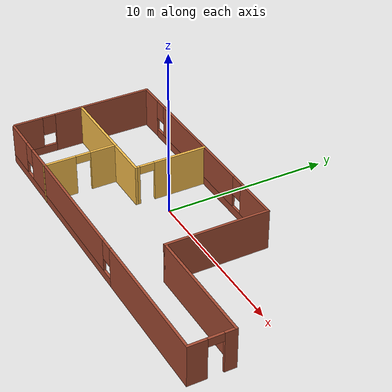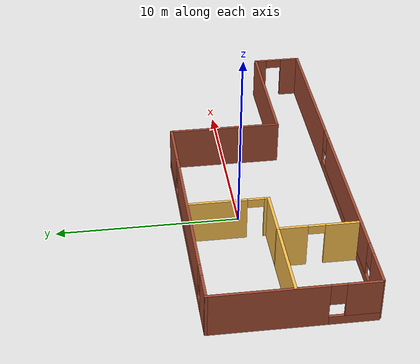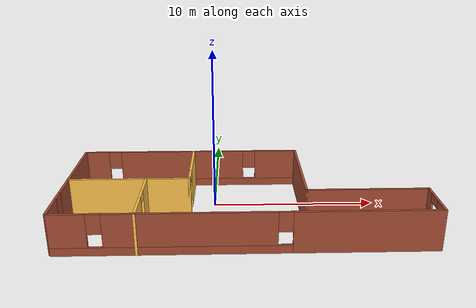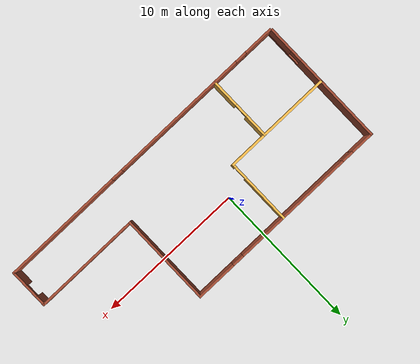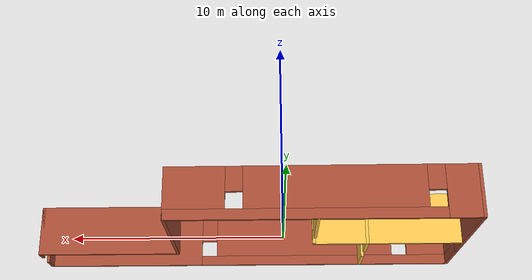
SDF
<?xml version='1.0'?>
<sdf version='1.7'>
  <model name='Buliding'>
    <pose>1.84863 -1.30124 0 0 -0 0</pose>
    <link name='Wall_10'>
      <collision name='Wall_10_Collision'>
        <geometry>
          <box>
            <size>4.75 0.15 2.5</size>
          </box>
        </geometry>
        <pose>0 0 1.25 0 -0 0</pose>
      </collision>
      <visual name='Wall_10_Visual'>
        <pose>0 0 1.25 0 -0 0</pose>
        <geometry>
          <box>
            <size>4.75 0.15 2.5</size>
          </box>
        </geometry>
        <material>
          <script>
            <uri>file://media/materials/scripts/gazebo.material</uri>
            <name>Gazebo/Grey</name>
          </script>
          <ambient>1 0.764706 0.305882 1</ambient>
        </material>
        <meta>
          <layer>0</layer>
        </meta>
      </visual>
      <pose>-8.25301 -0.003042 0 0 -0 0</pose>
    </link>
    <link name='Wall_11'>
      <pose>-5.95301 -2.17804 0 0 -0 -1.5708</pose>
      <visual name='Wall_11_Visual_0'>
        <pose>-1.42346 0 1.25 0 -0 0</pose>
        <geometry>
          <box>
            <size>1.65308 0.15 2.5</size>
          </box>
        </geometry>
        <material>
          <script>
            <uri>file://media/materials/scripts/gazebo.material</uri>
            <name>Gazebo/Grey</name>
          </script>
          <ambient>1 0.764706 0.305882 1</ambient>
        </material>
        <meta>
          <layer>0</layer>
        </meta>
      </visual>
      <collision name='Wall_11_Collision_0'>
        <geometry>
          <box>
            <size>1.65308 0.15 2.5</size>
          </box>
        </geometry>
        <pose>-1.42346 0 1.25 0 -0 0</pose>
      </collision>
      <visual name='Wall_11_Visual_1'>
        <pose>1.27654 0 1.25 0 -0 0</pose>
        <geometry>
          <box>
            <size>1.94692 0.15 2.5</size>
          </box>
        </geometry>
        <material>
          <script>
            <uri>file://media/materials/scripts/gazebo.material</uri>
            <name>Gazebo/Grey</name>
          </script>
          <ambient>1 0.764706 0.305882 1</ambient>
        </material>
        <meta>
          <layer>0</layer>
        </meta>
      </visual>
      <collision name='Wall_11_Collision_1'>
        <geometry>
          <box>
            <size>1.94692 0.15 2.5</size>
          </box>
        </geometry>
        <pose>1.27654 0 1.25 0 -0 0</pose>
      </collision>
      <visual name='Wall_11_Visual_2'>
        <pose>-0.14692 0 2.25 0 -0 0</pose>
        <geometry>
          <box>
            <size>0.9 0.15 0.5</size>
          </box>
        </geometry>
        <material>
          <script>
            <uri>file://media/materials/scripts/gazebo.material</uri>
            <name>Gazebo/Grey</name>
          </script>
          <ambient>1 0.764706 0.305882 1</ambient>
        </material>
        <meta>
          <layer>0</layer>
        </meta>
      </visual>
      <collision name='Wall_11_Collision_2'>
        <geometry>
          <box>
            <size>0.9 0.15 0.5</size>
          </box>
        </geometry>
        <pose>-0.14692 0 2.25 0 -0 0</pose>
      </collision>
    </link>
    <link name='Wall_13'>
      <collision name='Wall_13_Collision'>
        <geometry>
          <box>
            <size>2.75 0.15 2.5</size>
          </box>
        </geometry>
        <pose>0 0 1.25 0 -0 0</pose>
      </collision>
      <visual name='Wall_13_Visual'>
        <pose>0 0 1.25 0 -0 0</pose>
        <geometry>
          <box>
            <size>2.75 0.15 2.5</size>
          </box>
        </geometry>
        <material>
          <script>
            <uri>file://media/materials/scripts/gazebo.material</uri>
            <name>Gazebo/Grey</name>
          </script>
          <ambient>1 0.764706 0.305882 1</ambient>
        </material>
        <meta>
          <layer>0</layer>
        </meta>
      </visual>
      <pose>-4.65301 -0.003042 0 0 -0 0</pose>
    </link>
    <link name='Wall_14'>
      <pose>-3.35302 2.17196 0 0 -0 1.5708</pose>
      <visual name='Wall_14_Visual_0'>
        <pose>-2.09628 0 1.25 0 -0 0</pose>
        <geometry>
          <box>
            <size>0.307443 0.15 2.5</size>
          </box>
        </geometry>
        <material>
          <script>
            <uri>file://media/materials/scripts/gazebo.material</uri>
            <name>Gazebo/Grey</name>
          </script>
          <ambient>1 0.764706 0.305882 1</ambient>
        </material>
        <meta>
          <layer>0</layer>
        </meta>
      </visual>
      <collision name='Wall_14_Collision_0'>
        <geometry>
          <box>
            <size>0.307443 0.15 2.5</size>
          </box>
        </geometry>
        <pose>-2.09628 0 1.25 0 -0 0</pose>
      </collision>
      <visual name='Wall_14_Visual_1'>
        <pose>0.603722 0 1.25 0 -0 0</pose>
        <geometry>
          <box>
            <size>3.29256 0.15 2.5</size>
          </box>
        </geometry>
        <material>
          <script>
            <uri>file://media/materials/scripts/gazebo.material</uri>
            <name>Gazebo/Grey</name>
          </script>
          <ambient>1 0.764706 0.305882 1</ambient>
        </material>
        <meta>
          <layer>0</layer>
        </meta>
      </visual>
      <collision name='Wall_14_Collision_1'>
        <geometry>
          <box>
            <size>3.29256 0.15 2.5</size>
          </box>
        </geometry>
        <pose>0.603722 0 1.25 0 -0 0</pose>
      </collision>
      <visual name='Wall_14_Visual_2'>
        <pose>-1.49256 0 2.25 0 -0 0</pose>
        <geometry>
          <box>
            <size>0.9 0.15 0.5</size>
          </box>
        </geometry>
        <material>
          <script>
            <uri>file://media/materials/scripts/gazebo.material</uri>
            <name>Gazebo/Grey</name>
          </script>
          <ambient>1 0.764706 0.305882 1</ambient>
        </material>
        <meta>
          <layer>0</layer>
        </meta>
      </visual>
      <collision name='Wall_14_Collision_2'>
        <geometry>
          <box>
            <size>0.9 0.15 0.5</size>
          </box>
        </geometry>
        <pose>-1.49256 0 2.25 0 -0 0</pose>
      </collision>
    </link>
    <link name='Wall_2'>
      <pose>-3.55 4.35304 0 0 -0 0</pose>
      <visual name='Wall_2_Visual_0'>
        <pose>-6.31386 0 1.25 0 -0 0</pose>
        <geometry>
          <box>
            <size>1.62227 0.15 2.5</size>
          </box>
        </geometry>
        <material>
          <script>
            <uri>file://media/materials/scripts/gazebo.material</uri>
            <name>Gazebo/Bricks</name>
          </script>
          <ambient>1 1 1 1</ambient>
        </material>
        <meta>
          <layer>0</layer>
        </meta>
      </visual>
      <collision name='Wall_2_Collision_0'>
        <geometry>
          <box>
            <size>1.62227 0.15 2.5</size>
          </box>
        </geometry>
        <pose>-6.31386 0 1.25 0 -0 0</pose>
      </collision>
      <visual name='Wall_2_Visual_1'>
        <pose>0.811137 0 0.25 0 -0 0</pose>
        <geometry>
          <box>
            <size>12.6277 0.15 0.5</size>
          </box>
        </geometry>
        <material>
          <script>
            <uri>file://media/materials/scripts/gazebo.material</uri>
            <name>Gazebo/Bricks</name>
          </script>
          <ambient>1 1 1 1</ambient>
        </material>
        <meta>
          <layer>0</layer>
        </meta>
      </visual>
      <collision name='Wall_2_Collision_1'>
        <geometry>
          <box>
            <size>12.6277 0.15 0.5</size>
          </box>
        </geometry>
        <pose>0.811137 0 0.25 0 -0 0</pose>
      </collision>
      <visual name='Wall_2_Visual_2'>
        <pose>-0.591928 0 1.5 0 -0 0</pose>
        <geometry>
          <box>
            <size>8.22159 0.15 2</size>
          </box>
        </geometry>
        <material>
          <script>
            <uri>file://media/materials/scripts/gazebo.material</uri>
            <name>Gazebo/Bricks</name>
          </script>
          <ambient>1 1 1 1</ambient>
        </material>
        <meta>
          <layer>0</layer>
        </meta>
      </visual>
      <collision name='Wall_2_Collision_2'>
        <geometry>
          <box>
            <size>8.22159 0.15 2</size>
          </box>
        </geometry>
        <pose>-0.591928 0 1.5 0 -0 0</pose>
      </collision>
      <visual name='Wall_2_Visual_3'>
        <pose>5.72193 0 1.5 0 -0 0</pose>
        <geometry>
          <box>
            <size>2.80613 0.15 2</size>
          </box>
        </geometry>
        <material>
          <script>
            <uri>file://media/materials/scripts/gazebo.material</uri>
            <name>Gazebo/Bricks</name>
          </script>
          <ambient>1 1 1 1</ambient>
        </material>
        <meta>
          <layer>0</layer>
        </meta>
      </visual>
      <collision name='Wall_2_Collision_3'>
        <geometry>
          <box>
            <size>2.80613 0.15 2</size>
          </box>
        </geometry>
        <pose>5.72193 0 1.5 0 -0 0</pose>
      </collision>
      <visual name='Wall_2_Visual_4'>
        <pose>-5.10273 0 1.9 0 -0 0</pose>
        <geometry>
          <box>
            <size>0.8 0.15 1.2</size>
          </box>
        </geometry>
        <material>
          <script>
            <uri>file://media/materials/scripts/gazebo.material</uri>
            <name>Gazebo/Bricks</name>
          </script>
          <ambient>1 1 1 1</ambient>
        </material>
        <meta>
          <layer>0</layer>
        </meta>
      </visual>
      <collision name='Wall_2_Collision_4'>
        <geometry>
          <box>
            <size>0.8 0.15 1.2</size>
          </box>
        </geometry>
        <pose>-5.10273 0 1.9 0 -0 0</pose>
      </collision>
      <visual name='Wall_2_Visual_5'>
        <pose>3.91887 0 1.9 0 -0 0</pose>
        <geometry>
          <box>
            <size>0.8 0.15 1.2</size>
          </box>
        </geometry>
        <material>
          <script>
            <uri>file://media/materials/scripts/gazebo.material</uri>
            <name>Gazebo/Bricks</name>
          </script>
          <ambient>1 1 1 1</ambient>
        </material>
        <meta>
          <layer>0</layer>
        </meta>
      </visual>
      <collision name='Wall_2_Collision_5'>
        <geometry>
          <box>
            <size>0.8 0.15 1.2</size>
          </box>
        </geometry>
        <pose>3.91887 0 1.9 0 -0 0</pose>
      </collision>
    </link>
    <link name='Wall_3'>
      <collision name='Wall_3_Collision'>
        <geometry>
          <box>
            <size>6.25 0.15 2.5</size>
          </box>
        </geometry>
        <pose>0 0 1.25 0 -0 0</pose>
      </collision>
      <visual name='Wall_3_Visual'>
        <pose>0 0 1.25 0 -0 0</pose>
        <geometry>
          <box>
            <size>6.25 0.15 2.5</size>
          </box>
        </geometry>
        <material>
          <script>
            <uri>file://media/materials/scripts/gazebo.material</uri>
            <name>Gazebo/Bricks</name>
          </script>
          <ambient>1 1 1 1</ambient>
        </material>
        <meta>
          <layer>0</layer>
        </meta>
      </visual>
      <pose>3.5 1.30304 0 0 -0 -1.5708</pose>
    </link>
    <link name='Wall_4'>
      <collision name='Wall_4_Collision'>
        <geometry>
          <box>
            <size>7.25 0.15 2.5</size>
          </box>
        </geometry>
        <pose>0 0 1.25 0 -0 0</pose>
      </collision>
      <visual name='Wall_4_Visual'>
        <pose>0 0 1.25 0 -0 0</pose>
        <geometry>
          <box>
            <size>7.25 0.15 2.5</size>
          </box>
        </geometry>
        <material>
          <script>
            <uri>file://media/materials/scripts/gazebo.material</uri>
            <name>Gazebo/Bricks</name>
          </script>
          <ambient>1 1 1 1</ambient>
        </material>
        <meta>
          <layer>0</layer>
        </meta>
      </visual>
      <pose>7.05 -1.74696 0 0 -0 0</pose>
    </link>
    <link name='Wall_5'>
      <pose>10.6 -3.04696 0 0 -0 -1.5708</pose>
      <visual name='Wall_5_Visual_0'>
        <pose>-1.01586 0 1.25 0 -0 0</pose>
        <geometry>
          <box>
            <size>0.718275 0.15 2.5</size>
          </box>
        </geometry>
        <material>
          <script>
            <uri>file://media/materials/scripts/gazebo.material</uri>
            <name>Gazebo/Bricks</name>
          </script>
          <ambient>1 1 1 1</ambient>
        </material>
        <meta>
          <layer>0</layer>
        </meta>
      </visual>
      <collision name='Wall_5_Collision_0'>
        <geometry>
          <box>
            <size>0.718275 0.15 2.5</size>
          </box>
        </geometry>
        <pose>-1.01586 0 1.25 0 -0 0</pose>
      </collision>
      <visual name='Wall_5_Visual_1'>
        <pose>0.809138 0 1.25 0 -0 0</pose>
        <geometry>
          <box>
            <size>1.13173 0.15 2.5</size>
          </box>
        </geometry>
        <material>
          <script>
            <uri>file://media/materials/scripts/gazebo.material</uri>
            <name>Gazebo/Bricks</name>
          </script>
          <ambient>1 1 1 1</ambient>
        </material>
        <meta>
          <layer>0</layer>
        </meta>
      </visual>
      <collision name='Wall_5_Collision_1'>
        <geometry>
          <box>
            <size>1.13173 0.15 2.5</size>
          </box>
        </geometry>
        <pose>0.809138 0 1.25 0 -0 0</pose>
      </collision>
      <visual name='Wall_5_Visual_2'>
        <pose>-0.206725 0 2.25 0 -0 0</pose>
        <geometry>
          <box>
            <size>0.9 0.15 0.5</size>
          </box>
        </geometry>
        <material>
          <script>
            <uri>file://media/materials/scripts/gazebo.material</uri>
            <name>Gazebo/Bricks</name>
          </script>
          <ambient>1 1 1 1</ambient>
        </material>
        <meta>
          <layer>0</layer>
        </meta>
      </visual>
      <collision name='Wall_5_Collision_2'>
        <geometry>
          <box>
            <size>0.9 0.15 0.5</size>
          </box>
        </geometry>
        <pose>-0.206725 0 2.25 0 -0 0</pose>
      </collision>
    </link>
    <link name='Wall_6'>
      <pose>0.05 -4.34696 0 0 -0 3.14159</pose>
      <visual name='Wall_6_Visual_0'>
        <pose>-6.52942 0 1.25 0 -0 0</pose>
        <geometry>
          <box>
            <size>8.19115 0.15 2.5</size>
          </box>
        </geometry>
        <material>
          <script>
            <uri>file://media/materials/scripts/gazebo.material</uri>
            <name>Gazebo/Bricks</name>
          </script>
          <ambient>1 1 1 1</ambient>
        </material>
        <meta>
          <layer>0</layer>
        </meta>
      </visual>
      <collision name='Wall_6_Collision_0'>
        <geometry>
          <box>
            <size>8.19115 0.15 2.5</size>
          </box>
        </geometry>
        <pose>-6.52942 0 1.25 0 -0 0</pose>
      </collision>
      <visual name='Wall_6_Visual_1'>
        <pose>4.09558 0 0.25 0 -0 0</pose>
        <geometry>
          <box>
            <size>13.0588 0.15 0.5</size>
          </box>
        </geometry>
        <material>
          <script>
            <uri>file://media/materials/scripts/gazebo.material</uri>
            <name>Gazebo/Bricks</name>
          </script>
          <ambient>1 1 1 1</ambient>
        </material>
        <meta>
          <layer>0</layer>
        </meta>
      </visual>
      <collision name='Wall_6_Collision_1'>
        <geometry>
          <box>
            <size>13.0588 0.15 0.5</size>
          </box>
        </geometry>
        <pose>4.09558 0 0.25 0 -0 0</pose>
      </collision>
      <visual name='Wall_6_Visual_2'>
        <pose>3.06707 0 1.5 0 -0 0</pose>
        <geometry>
          <box>
            <size>9.40184 0.15 2</size>
          </box>
        </geometry>
        <material>
          <script>
            <uri>file://media/materials/scripts/gazebo.material</uri>
            <name>Gazebo/Bricks</name>
          </script>
          <ambient>1 1 1 1</ambient>
        </material>
        <meta>
          <layer>0</layer>
        </meta>
      </visual>
      <collision name='Wall_6_Collision_2'>
        <geometry>
          <box>
            <size>9.40184 0.15 2</size>
          </box>
        </geometry>
        <pose>3.06707 0 1.5 0 -0 0</pose>
      </collision>
      <visual name='Wall_6_Visual_3'>
        <pose>9.5965 0 1.5 0 -0 0</pose>
        <geometry>
          <box>
            <size>2.05701 0.15 2</size>
          </box>
        </geometry>
        <material>
          <script>
            <uri>file://media/materials/scripts/gazebo.material</uri>
            <name>Gazebo/Bricks</name>
          </script>
          <ambient>1 1 1 1</ambient>
        </material>
        <meta>
          <layer>0</layer>
        </meta>
      </visual>
      <collision name='Wall_6_Collision_3'>
        <geometry>
          <box>
            <size>2.05701 0.15 2</size>
          </box>
        </geometry>
        <pose>9.5965 0 1.5 0 -0 0</pose>
      </collision>
      <visual name='Wall_6_Visual_4'>
        <pose>-2.03385 0 1.9 0 -0 0</pose>
        <geometry>
          <box>
            <size>0.8 0.15 1.2</size>
          </box>
        </geometry>
        <material>
          <script>
            <uri>file://media/materials/scripts/gazebo.material</uri>
            <name>Gazebo/Bricks</name>
          </script>
          <ambient>1 1 1 1</ambient>
        </material>
        <meta>
          <layer>0</layer>
        </meta>
      </visual>
      <collision name='Wall_6_Collision_4'>
        <geometry>
          <box>
            <size>0.8 0.15 1.2</size>
          </box>
        </geometry>
        <pose>-2.03385 0 1.9 0 -0 0</pose>
      </collision>
      <visual name='Wall_6_Visual_5'>
        <pose>8.16799 0 1.9 0 -0 0</pose>
        <geometry>
          <box>
            <size>0.8 0.15 1.2</size>
          </box>
        </geometry>
        <material>
          <script>
            <uri>file://media/materials/scripts/gazebo.material</uri>
            <name>Gazebo/Bricks</name>
          </script>
          <ambient>1 1 1 1</ambient>
        </material>
        <meta>
          <layer>0</layer>
        </meta>
      </visual>
      <collision name='Wall_6_Collision_5'>
        <geometry>
          <box>
            <size>0.8 0.15 1.2</size>
          </box>
        </geometry>
        <pose>8.16799 0 1.9 0 -0 0</pose>
      </collision>
    </link>
    <link name='Wall_8'>
      <pose>-10.6 0.053042 0 0 -0 -1.5708</pose>
      <visual name='Wall_8_Visual_0'>
        <pose>-1.29245 0 1.25 0 -0 0</pose>
        <geometry>
          <box>
            <size>6.16511 0.15 2.5</size>
          </box>
        </geometry>
        <material>
          <script>
            <uri>file://media/materials/scripts/gazebo.material</uri>
            <name>Gazebo/Bricks</name>
          </script>
          <ambient>1 1 1 1</ambient>
        </material>
        <meta>
          <layer>0</layer>
        </meta>
      </visual>
      <collision name='Wall_8_Collision_0'>
        <geometry>
          <box>
            <size>6.16511 0.15 2.5</size>
          </box>
        </geometry>
        <pose>-1.29245 0 1.25 0 -0 0</pose>
      </collision>
      <visual name='Wall_8_Visual_1'>
        <pose>3.08256 0 0.25 0 -0 0</pose>
        <geometry>
          <box>
            <size>2.58489 0.15 0.5</size>
          </box>
        </geometry>
        <material>
          <script>
            <uri>file://media/materials/scripts/gazebo.material</uri>
            <name>Gazebo/Bricks</name>
          </script>
          <ambient>1 1 1 1</ambient>
        </material>
        <meta>
          <layer>0</layer>
        </meta>
      </visual>
      <collision name='Wall_8_Collision_1'>
        <geometry>
          <box>
            <size>2.58489 0.15 0.5</size>
          </box>
        </geometry>
        <pose>3.08256 0 0.25 0 -0 0</pose>
      </collision>
      <visual name='Wall_8_Visual_2'>
        <pose>3.48256 0 1.5 0 -0 0</pose>
        <geometry>
          <box>
            <size>1.78489 0.15 2</size>
          </box>
        </geometry>
        <material>
          <script>
            <uri>file://media/materials/scripts/gazebo.material</uri>
            <name>Gazebo/Bricks</name>
          </script>
          <ambient>1 1 1 1</ambient>
        </material>
        <meta>
          <layer>0</layer>
        </meta>
      </visual>
      <collision name='Wall_8_Collision_2'>
        <geometry>
          <box>
            <size>1.78489 0.15 2</size>
          </box>
        </geometry>
        <pose>3.48256 0 1.5 0 -0 0</pose>
      </collision>
      <visual name='Wall_8_Visual_3'>
        <pose>2.19011 0 1.9 0 -0 0</pose>
        <geometry>
          <box>
            <size>0.8 0.15 1.2</size>
          </box>
        </geometry>
        <material>
          <script>
            <uri>file://media/materials/scripts/gazebo.material</uri>
            <name>Gazebo/Bricks</name>
          </script>
          <ambient>1 1 1 1</ambient>
        </material>
        <meta>
          <layer>0</layer>
        </meta>
      </visual>
      <collision name='Wall_8_Collision_3'>
        <geometry>
          <box>
            <size>0.8 0.15 1.2</size>
          </box>
        </geometry>
        <pose>2.19011 0 1.9 0 -0 0</pose>
      </collision>
    </link>
    <static>1</static>
  </model>
</sdf>
